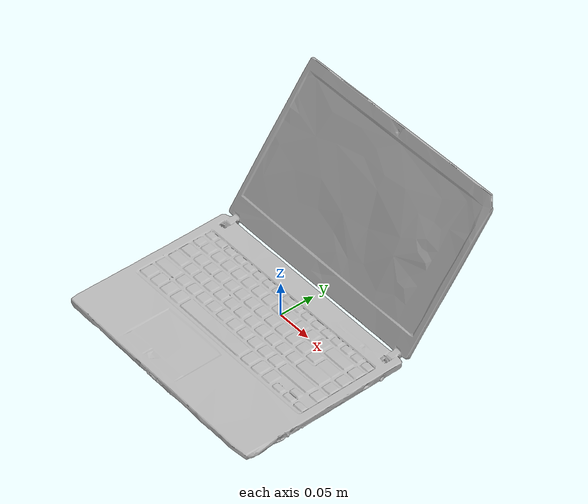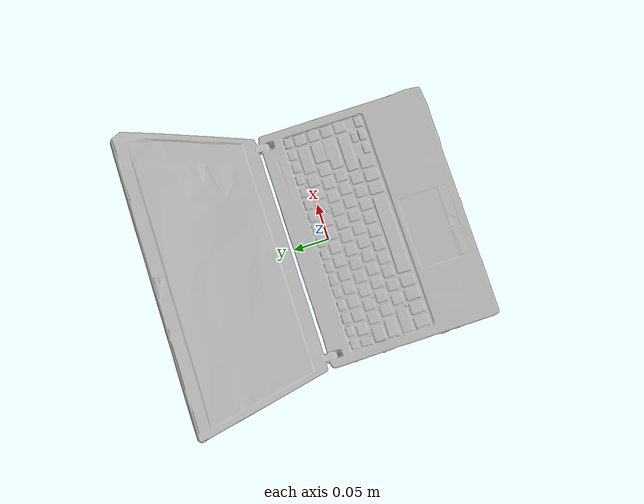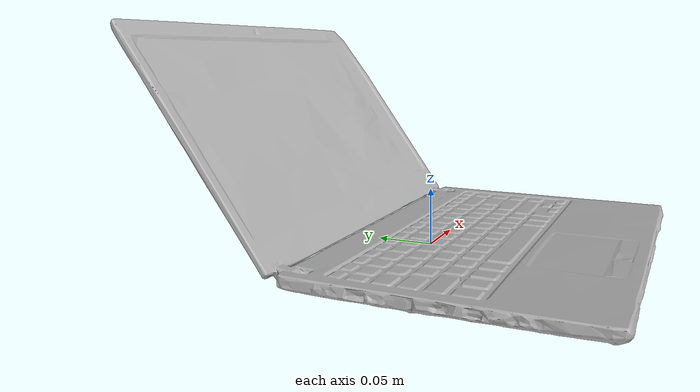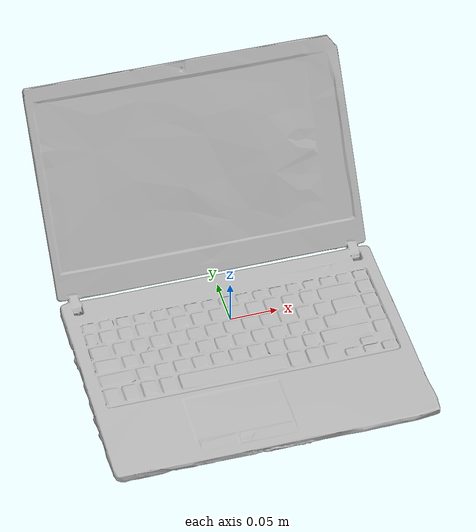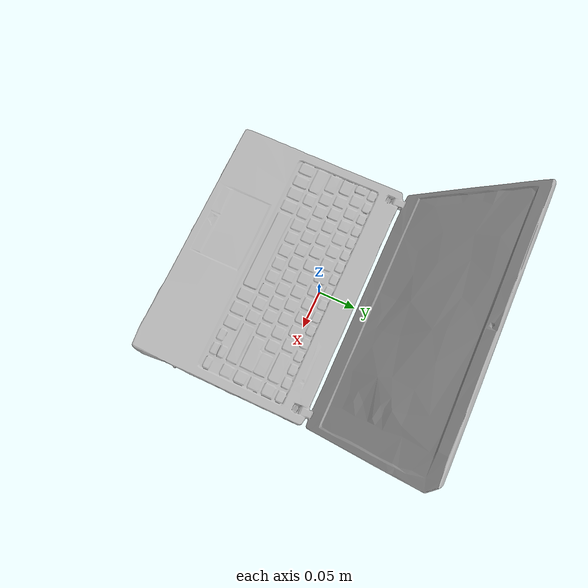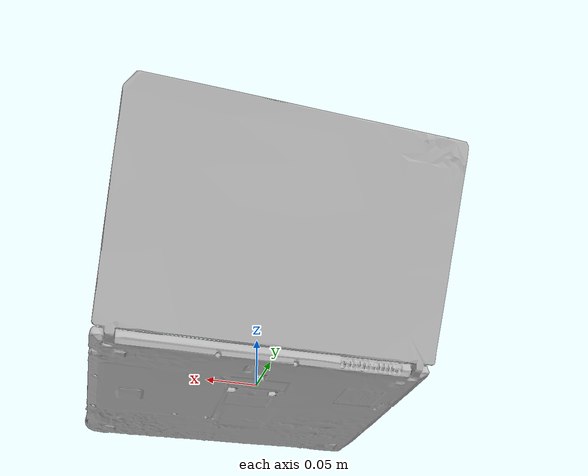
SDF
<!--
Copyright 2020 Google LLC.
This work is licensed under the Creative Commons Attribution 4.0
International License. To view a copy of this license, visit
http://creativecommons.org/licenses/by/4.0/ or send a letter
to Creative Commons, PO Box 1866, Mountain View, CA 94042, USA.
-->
<?xml version="1.0" ?>
<sdf version="1.6">
  <model name="Travel_Mate_P_series_Notebook">
    <link name="link_0">
      <visual name="visual">
        <geometry>
          <mesh>
            <uri>meshes/model.obj</uri>
          </mesh>
        </geometry>
      </visual>
      <collision name="collision_0">
        <geometry>
          <mesh>
            <uri>meshes/model.obj</uri>
          </mesh>
        </geometry>
      </collision>
    </link>
  </model>
</sdf>
